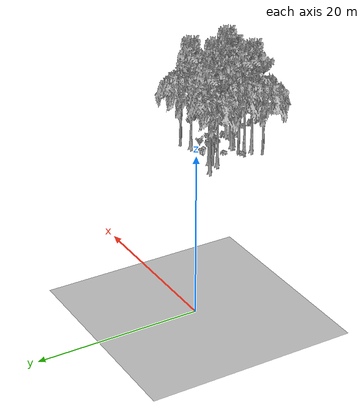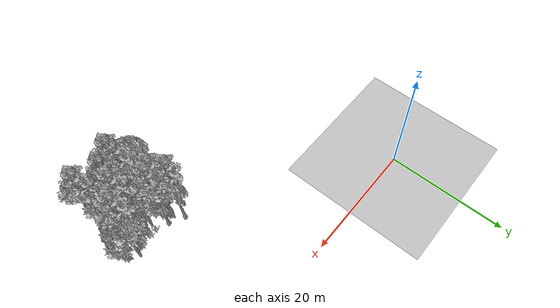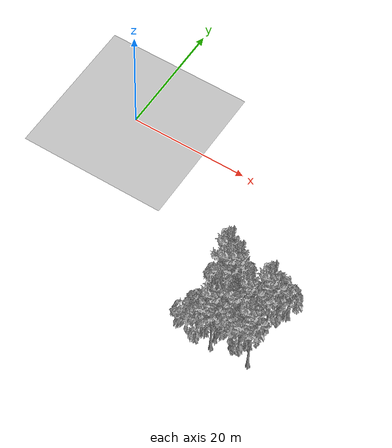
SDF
<sdf version="1.7">
 <world name="default">
  <model name="ground_plane">
   <static>1</static>
   <link name="link">
    <collision name="collision">
     <pose>-50 0 0 0 -0 0</pose>
     <geometry><plane><normal>0 0 1</normal><size>80 80</size></plane></geometry>
     <surface><contact><ode><min_depth>0.01</min_depth><max_vel>0</max_vel></ode></contact></surface>
    </collision>
    <visual name="grass">
     <cast_shadows>0</cast_shadows>
     <geometry>
      <mesh>
       <scale>0.46714285714285714 0.46714285714285714 0.1</scale>
       <uri>file://grass_plane/meshes/grass_plane.dae</uri>
      </mesh>
     </geometry>
    </visual>
   </link>
  </model>
  <model name="Tree 37">
   <static>1</static>
   <pose>34.452207014671515 -26.946937135562827 0 1.57079 -0 0</pose>
   <link name="link">
    <collision name="collision">
     <geometry><mesh><scale>3.5 5 3.5</scale><uri>model://tree_9/meshes/tree_9.obj</uri></mesh></geometry>
    </collision>
    <visual name="visual">
     <geometry><mesh><scale>3.5 5 3.5</scale><uri>model://tree_9/meshes/tree_9.obj</uri></mesh></geometry>
    </visual>
   </link>
  </model>
  <model name="Tree 53">
   <static>1</static>
   <pose>33.6629467401803 -22.722040825163603 0 1.57079 -0 0</pose>
   <link name="link">
    <collision name="collision">
     <geometry><mesh><scale>3.5 5 3.5</scale><uri>model://tree_2/meshes/tree_2.obj</uri></mesh></geometry>
    </collision>
    <visual name="visual">
     <geometry><mesh><scale>3.5 5 3.5</scale><uri>model://tree_2/meshes/tree_2.obj</uri></mesh></geometry>
    </visual>
   </link>
  </model>
  <model name="Tree 59">
   <static>1</static>
   <pose>31.74425881670828 -21.195463104107315 0 1.57079 -0 0</pose>
   <link name="link">
    <collision name="collision">
     <geometry><mesh><scale>3.5 5 3.5</scale><uri>model://tree_9/meshes/tree_9.obj</uri></mesh></geometry>
    </collision>
    <visual name="visual">
     <geometry><mesh><scale>3.5 5 3.5</scale><uri>model://tree_9/meshes/tree_9.obj</uri></mesh></geometry>
    </visual>
   </link>
  </model>
  <model name="Tree 88">
   <static>1</static>
   <pose>38.06345675912188 -27.98710367454529 0 1.57079 -0 0</pose>
   <link name="link">
    <collision name="collision">
     <geometry><mesh><scale>3.5 5 3.5</scale><uri>model://tree_9/meshes/tree_9.obj</uri></mesh></geometry>
    </collision>
    <visual name="visual">
     <geometry><mesh><scale>3.5 5 3.5</scale><uri>model://tree_9/meshes/tree_9.obj</uri></mesh></geometry>
    </visual>
   </link>
  </model>
  <model name="Tree 124">
   <static>1</static>
   <pose>29.852353983904464 -28.996796185330957 0 1.57079 -0 0</pose>
   <link name="link">
    <collision name="collision">
     <geometry><mesh><scale>3.5 5 3.5</scale><uri>model://tree_2/meshes/tree_2.obj</uri></mesh></geometry>
    </collision>
    <visual name="visual">
     <geometry><mesh><scale>3.5 5 3.5</scale><uri>model://tree_2/meshes/tree_2.obj</uri></mesh></geometry>
    </visual>
   </link>
  </model>
  <model name="Tree 210">
   <static>1</static>
   <pose>34.13123204941253 -23.46106552055792 0 1.57079 -0 0</pose>
   <link name="link">
    <collision name="collision">
     <geometry><mesh><scale>3.5 5 3.5</scale><uri>model://tree_2/meshes/tree_2.obj</uri></mesh></geometry>
    </collision>
    <visual name="visual">
     <geometry><mesh><scale>3.5 5 3.5</scale><uri>model://tree_2/meshes/tree_2.obj</uri></mesh></geometry>
    </visual>
   </link>
  </model>
  <model name="Tree 227">
   <static>1</static>
   <pose>37.342881032619346 -21.593244898552815 0 1.57079 -0 0</pose>
   <link name="link">
    <collision name="collision">
     <geometry><mesh><scale>3.5 5 3.5</scale><uri>model://tree_9/meshes/tree_9.obj</uri></mesh></geometry>
    </collision>
    <visual name="visual">
     <geometry><mesh><scale>3.5 5 3.5</scale><uri>model://tree_9/meshes/tree_9.obj</uri></mesh></geometry>
    </visual>
   </link>
  </model>
  <model name="Tree 289">
   <static>1</static>
   <pose>31.92182054987086 -27.16169251687308 0 1.57079 -0 0</pose>
   <link name="link">
    <collision name="collision">
     <geometry><mesh><scale>3.5 5 3.5</scale><uri>model://tree_9/meshes/tree_9.obj</uri></mesh></geometry>
    </collision>
    <visual name="visual">
     <geometry><mesh><scale>3.5 5 3.5</scale><uri>model://tree_9/meshes/tree_9.obj</uri></mesh></geometry>
    </visual>
   </link>
  </model>
  <model name="Tree 293">
   <static>1</static>
   <pose>30.642613644532588 -21.893488804264926 0 1.57079 -0 0</pose>
   <link name="link">
    <collision name="collision">
     <geometry><mesh><scale>3.5 5 3.5</scale><uri>model://tree_9/meshes/tree_9.obj</uri></mesh></geometry>
    </collision>
    <visual name="visual">
     <geometry><mesh><scale>3.5 5 3.5</scale><uri>model://tree_9/meshes/tree_9.obj</uri></mesh></geometry>
    </visual>
   </link>
  </model>
  <model name="Tree 310">
   <static>1</static>
   <pose>32.0338575107169 -28.482017654836174 0 1.57079 -0 0</pose>
   <link name="link">
    <collision name="collision">
     <geometry><mesh><scale>3.5 5 3.5</scale><uri>model://tree_9/meshes/tree_9.obj</uri></mesh></geometry>
    </collision>
    <visual name="visual">
     <geometry><mesh><scale>3.5 5 3.5</scale><uri>model://tree_9/meshes/tree_9.obj</uri></mesh></geometry>
    </visual>
   </link>
  </model>
  <model name="Tree 329">
   <static>1</static>
   <pose>35.23714669695305 -24.125893270709867 0 1.57079 -0 0</pose>
   <link name="link">
    <collision name="collision">
     <geometry><mesh><scale>3.5 5 3.5</scale><uri>model://tree_9/meshes/tree_9.obj</uri></mesh></geometry>
    </collision>
    <visual name="visual">
     <geometry><mesh><scale>3.5 5 3.5</scale><uri>model://tree_9/meshes/tree_9.obj</uri></mesh></geometry>
    </visual>
   </link>
  </model>
  <model name="Tree 473">
   <static>1</static>
   <pose>38.1308046495826 -20.36969604170272 0 1.57079 -0 0</pose>
   <link name="link">
    <collision name="collision">
     <geometry><mesh><scale>3.5 5 3.5</scale><uri>model://tree_2/meshes/tree_2.obj</uri></mesh></geometry>
    </collision>
    <visual name="visual">
     <geometry><mesh><scale>3.5 5 3.5</scale><uri>model://tree_2/meshes/tree_2.obj</uri></mesh></geometry>
    </visual>
   </link>
  </model>
  <model name="Tree 527">
   <static>1</static>
   <pose>34.57523060386171 -26.7152150790836 0 1.57079 -0 0</pose>
   <link name="link">
    <collision name="collision">
     <geometry><mesh><scale>3.5 5 3.5</scale><uri>model://tree_9/meshes/tree_9.obj</uri></mesh></geometry>
    </collision>
    <visual name="visual">
     <geometry><mesh><scale>3.5 5 3.5</scale><uri>model://tree_9/meshes/tree_9.obj</uri></mesh></geometry>
    </visual>
   </link>
  </model>
  <model name="Tree 559">
   <static>1</static>
   <pose>29.379580457952784 -19.924312886224158 0 1.57079 -0 0</pose>
   <link name="link">
    <collision name="collision">
     <geometry><mesh><scale>3.5 5 3.5</scale><uri>model://tree_9/meshes/tree_9.obj</uri></mesh></geometry>
    </collision>
    <visual name="visual">
     <geometry><mesh><scale>3.5 5 3.5</scale><uri>model://tree_9/meshes/tree_9.obj</uri></mesh></geometry>
    </visual>
   </link>
  </model>
  <model name="Tree 567">
   <static>1</static>
   <pose>31.756368023347292 -26.130395192267848 0 1.57079 -0 0</pose>
   <link name="link">
    <collision name="collision">
     <geometry><mesh><scale>3.5 5 3.5</scale><uri>model://tree_2/meshes/tree_2.obj</uri></mesh></geometry>
    </collision>
    <visual name="visual">
     <geometry><mesh><scale>3.5 5 3.5</scale><uri>model://tree_2/meshes/tree_2.obj</uri></mesh></geometry>
    </visual>
   </link>
  </model>
  <model name="Tree 582">
   <static>1</static>
   <pose>36.06706276872981 -27.409878398254214 0 1.57079 -0 0</pose>
   <link name="link">
    <collision name="collision">
     <geometry><mesh><scale>3.5 5 3.5</scale><uri>model://tree_2/meshes/tree_2.obj</uri></mesh></geometry>
    </collision>
    <visual name="visual">
     <geometry><mesh><scale>3.5 5 3.5</scale><uri>model://tree_2/meshes/tree_2.obj</uri></mesh></geometry>
    </visual>
   </link>
  </model>
  <model name="Tree 589">
   <static>1</static>
   <pose>30.48045071079413 -21.097540366152742 0 1.57079 -0 0</pose>
   <link name="link">
    <collision name="collision">
     <geometry><mesh><scale>3.5 5 3.5</scale><uri>model://tree_2/meshes/tree_2.obj</uri></mesh></geometry>
    </collision>
    <visual name="visual">
     <geometry><mesh><scale>3.5 5 3.5</scale><uri>model://tree_2/meshes/tree_2.obj</uri></mesh></geometry>
    </visual>
   </link>
  </model>
  <model name="Bush 22">
   <static>1</static>
   <pose>37.24744082711999 -24.502602356316636 0 1.57079 -0 0</pose>
   <link name="link">
    <collision name="collision">
     <geometry><mesh><scale>2 2 2</scale><uri>model://bush_2/meshes/bush_2.obj</uri></mesh></geometry>
     <surface><contact><collide_without_contact>false</collide_without_contact></contact></surface>
    </collision>
    <visual name="visual">
     <geometry><mesh><scale>2 2 2</scale><uri>model://bush_2/meshes/bush_2.obj</uri></mesh></geometry>
    </visual>
   </link>
  </model>
  <model name="Bush 51">
   <static>1</static>
   <pose>36.6630767144286 -25.633928814838463 0 1.57079 -0 0</pose>
   <link name="link">
    <collision name="collision">
     <geometry><mesh><scale>2 2 2</scale><uri>model://bush_2/meshes/bush_2.obj</uri></mesh></geometry>
     <surface><contact><collide_without_contact>false</collide_without_contact></contact></surface>
    </collision>
    <visual name="visual">
     <geometry><mesh><scale>2 2 2</scale><uri>model://bush_2/meshes/bush_2.obj</uri></mesh></geometry>
    </visual>
   </link>
  </model>
  <model name="Bush 109">
   <static>1</static>
   <pose>35.44644731167723 -27.751643971924533 0 1.57079 -0 0</pose>
   <link name="link">
    <collision name="collision">
     <geometry><mesh><scale>2 2 2</scale><uri>model://bush_5/meshes/bush_5.obj</uri></mesh></geometry>
     <surface><contact><collide_without_contact>false</collide_without_contact></contact></surface>
    </collision>
    <visual name="visual">
     <geometry><mesh><scale>2 2 2</scale><uri>model://bush_5/meshes/bush_5.obj</uri></mesh></geometry>
    </visual>
   </link>
  </model>
  <model name="Bush 146">
   <static>1</static>
   <pose>31.628130900440567 -26.51647173602221 0 1.57079 -0 0</pose>
   <link name="link">
    <collision name="collision">
     <geometry><mesh><scale>2 2 2</scale><uri>model://bush_2/meshes/bush_2.obj</uri></mesh></geometry>
     <surface><contact><collide_without_contact>false</collide_without_contact></contact></surface>
    </collision>
    <visual name="visual">
     <geometry><mesh><scale>2 2 2</scale><uri>model://bush_2/meshes/bush_2.obj</uri></mesh></geometry>
    </visual>
   </link>
  </model>
  <model name="Bush 482">
   <static>1</static>
   <pose>33.942795441034576 -21.534160530022383 0 1.57079 -0 0</pose>
   <link name="link">
    <collision name="collision">
     <geometry><mesh><scale>2 2 2</scale><uri>model://bush_4/meshes/bush_4.obj</uri></mesh></geometry>
     <surface><contact><collide_without_contact>false</collide_without_contact></contact></surface>
    </collision>
    <visual name="visual">
     <geometry><mesh><scale>2 2 2</scale><uri>model://bush_4/meshes/bush_4.obj</uri></mesh></geometry>
    </visual>
   </link>
  </model>
  <model name="Bush 513">
   <static>1</static>
   <pose>36.873320477725215 -22.749082788344346 0 1.57079 -0 0</pose>
   <link name="link">
    <collision name="collision">
     <geometry><mesh><scale>2 2 2</scale><uri>model://bush_0/meshes/bush_0.obj</uri></mesh></geometry>
     <surface><contact><collide_without_contact>false</collide_without_contact></contact></surface>
    </collision>
    <visual name="visual">
     <geometry><mesh><scale>2 2 2</scale><uri>model://bush_0/meshes/bush_0.obj</uri></mesh></geometry>
    </visual>
   </link>
  </model>
  <model name="Bush 517">
   <static>1</static>
   <pose>33.003009572640195 -24.513378304079538 0 1.57079 -0 0</pose>
   <link name="link">
    <collision name="collision">
     <geometry><mesh><scale>2 2 2</scale><uri>model://bush_2/meshes/bush_2.obj</uri></mesh></geometry>
     <surface><contact><collide_without_contact>false</collide_without_contact></contact></surface>
    </collision>
    <visual name="visual">
     <geometry><mesh><scale>2 2 2</scale><uri>model://bush_2/meshes/bush_2.obj</uri></mesh></geometry>
    </visual>
   </link>
  </model>
 </world>
</sdf>
